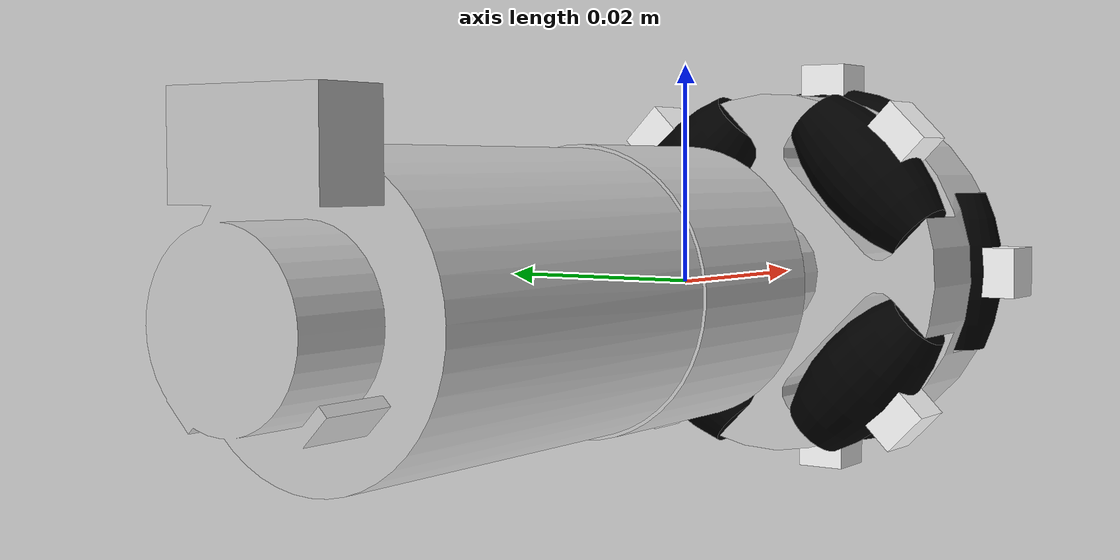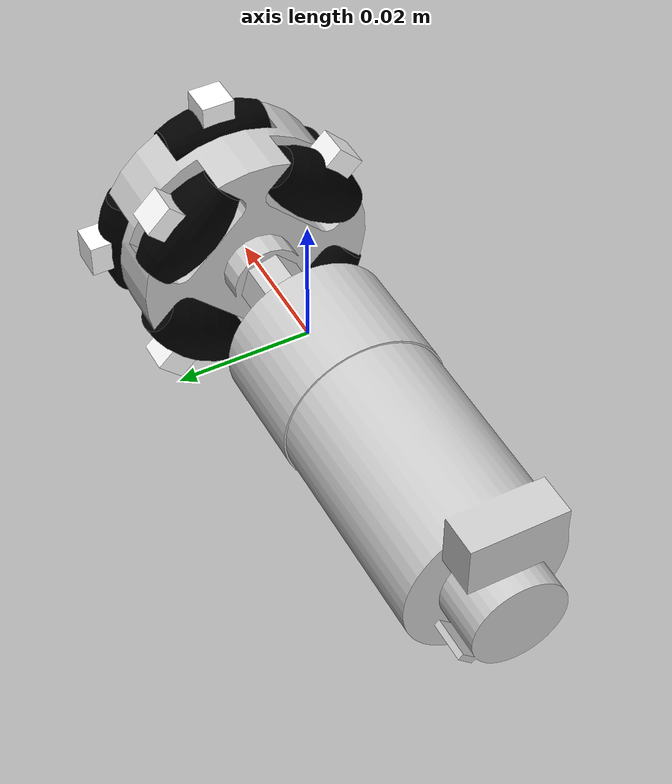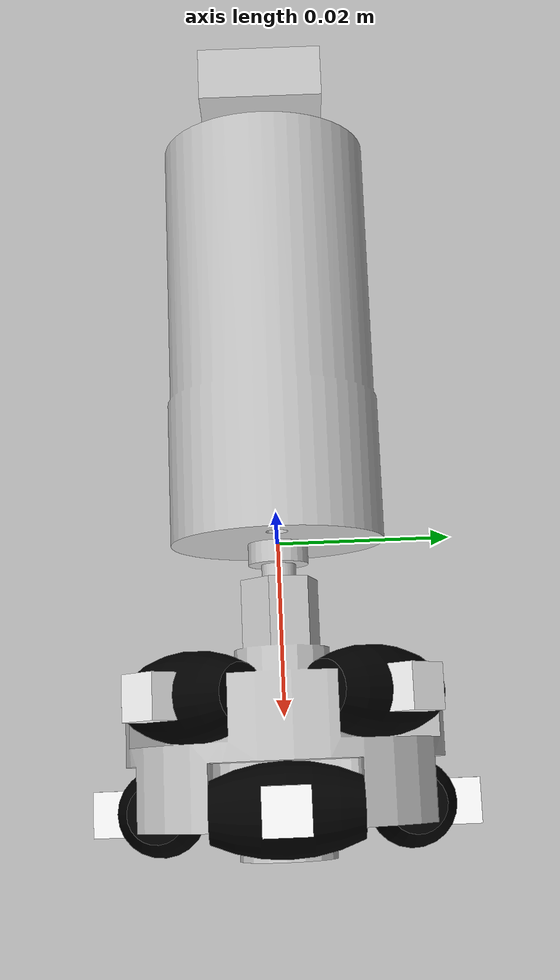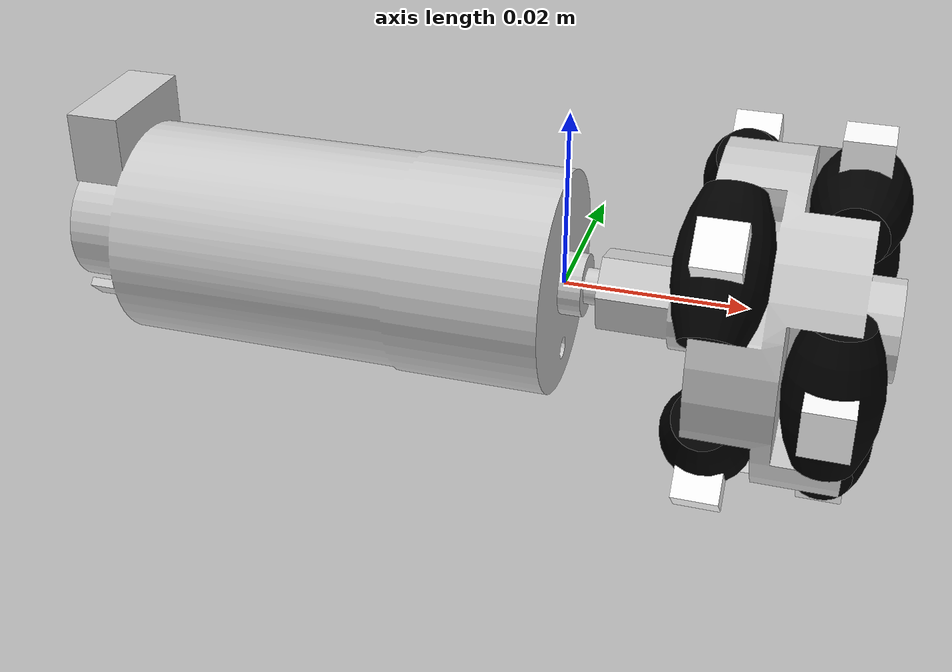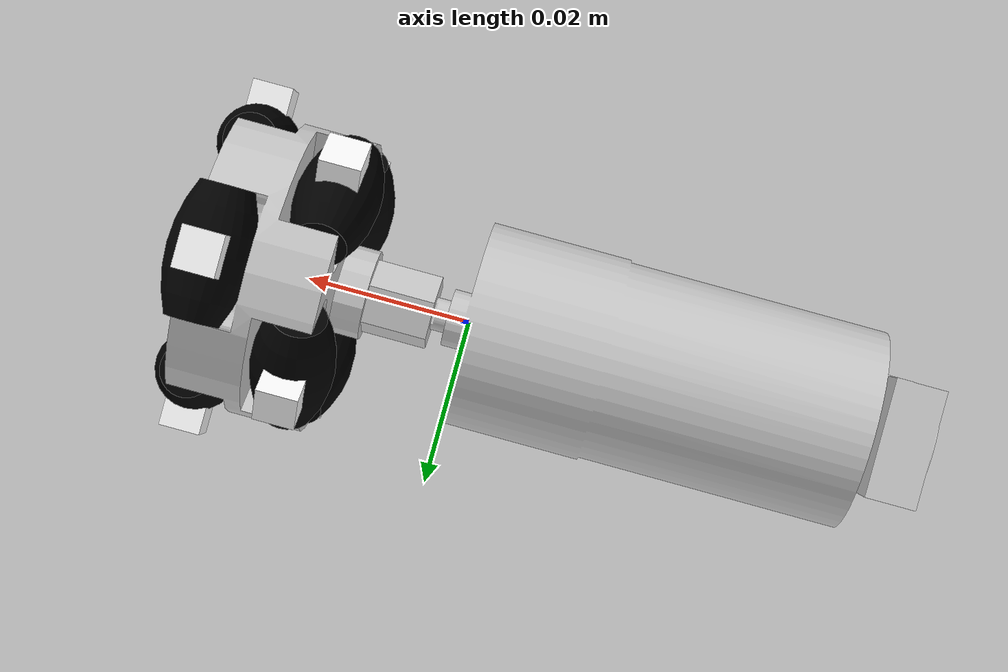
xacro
<?xml version="1.0"?>
<robot name="my_robo" xmlns:xacro="http://ros.org/wiki/xacro">
  <xacro:include filename="$(find sim2_lecture)/xacro/odm_common.xacro"/>
  <xacro:include filename="$(find sim2_lecture)/xacro/odm_omni_wheel_set1.xacro"/>

  <link name="base_link"/>

  <xacro:omni_wheel_set prefix="wheel0" parent="base_link" />

  <gazebo>
    <plugin name="gazebo_ros_control" filename="libgazebo_ros_control.so">
      <robotNamespace>/odm_robot</robotNamespace>
      <robotSimType>gazebo_ros_control/DefaultRobotHWSim</robotSimType>
      <legacyModeNS>true</legacyModeNS>
    </plugin>
  </gazebo>

</robot>

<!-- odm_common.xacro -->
<robot xmlns:xacro="http://ros.org/wiki/xacro">
  <xacro:macro name="pi" params="3.1415926535897931" />
  <material name="gray">
    <color rgba="0.8 0.8 0.8 1.0"/>
  </material>
  <material name="black">
    <color rgba="0 0 0 1.0"/>
  </material>
  <material name="white">
    <color rgba="1.0 1.0 1.0 1.0"/>
  </material>
  <material name="red">
    <color rgba="1.0 0 0 1.0"/>
  </material>
  <material name="light_red">
    <color rgba="1.0 0.5 0.5 1.0"/>
  </material>
  <material name="yellow">
    <color rgba="0 1.0 1.0 1.0"/>
  </material>
</robot>

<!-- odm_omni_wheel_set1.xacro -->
<robot xmlns:xacro="http://ros.org/wiki/xacro">
  <xacro:macro name="barrel" params="prefix parent dir">
    <joint name="${prefix}_joint" type="continuous"><!-- continuous -->
      <parent link="${parent}"/>
      <child link="${prefix}_link"/>
      <origin rpy="${pi/2} 0 ${dir}" xyz="${0.014*cos(dir)} ${0.014*sin(dir)} 0.006"/>
      <axis xyz="0 0 1"/>
      <dynamics damping="0.001"/>
    </joint>
    <transmission name="${prefix}_trans">
      <type>transmission_interface/SimpleTransmission</type>
      <joint name="${prefix}_joint">
        <hardwareInterface>hardware_interface/EffortJointInterface</hardwareInterface>
      </joint>
      <actuator name="${prefix}_motor">
        <hardwareInterface>hardware_interface/EffortJointInterface</hardwareInterface>
        <mechanicalReduction>1</mechanicalReduction>
      </actuator>
    </transmission>
    <link name="${prefix}_link">
      <visual>
        <geometry>
          <mesh filename="package://sim2_lecture/stl/omni_barrel.stl" />
        </geometry>
        <material name="black"/>
      </visual>
      <collision>
        <geometry>
          <mesh filename="package://sim2_lecture/stl/omni_barrel.stl" />
        </geometry>
      </collision>
      <inertial>
        <mass value="0.002"/>
        <inertia ixx="0.000001" ixy="0" ixz="0" iyy="0.000001" iyz="0" izz="0.000001"/>
      </inertial>
    </link>
    <gazebo reference="${prefix}_link">
      <mu1 value="2.5" />
      <mu2 value="2.5" />
      <kp value="5000" />
      <kd value="10" />
      <material>Gazebo/Black</material>
    </gazebo>

    <joint name="${prefix}_mark_joint" type="fixed">
      <parent link="${prefix}_link"/>
      <child link="${prefix}_mark_link"/>
      <origin rpy="0 0 0" xyz="0.005 0 0"/>
    </joint>
    <link name="${prefix}_mark_link">
      <visual>
        <geometry>
          <box size="0.005 0.005 0.005"/>
        </geometry>
        <material name="white"/>
      </visual>
    </link>
    <gazebo reference="${prefix}_mark_link">
      <material>Gazebo/White</material>
    </gazebo>
  </xacro:macro>

  <xacro:macro name="motor" params="prefix parent">
    <joint name="${prefix}_joint" type="fixed">
      <parent link="${parent}"/>
      <child  link="${prefix}_body_link"/>
    </joint>
    <link name="${prefix}_body_link">
      <visual>
        <geometry>
          <mesh filename="package://sim2_lecture/stl/ga25_body.stl" />
        </geometry>
        <material name="gray"/>
      </visual>
      <collision>
        <origin rpy="0 ${radians(90)} 0" xyz="-0.025 0 0"/>
        <geometry>
          <cylinder radius="0.012" length="0.05" />
        </geometry>
      </collision>
      <inertial>
        <mass value="0.150"/>
        <inertia ixx="0.0001" ixy="0" ixz="0" iyy="0.0001" iyz="0" izz="0.0001"/>
      </inertial>
    </link>
    <gazebo reference="${prefix}_body_link">
      <material>Gazebo/Gray</material>
    </gazebo>

    <joint name="${prefix}_shaft_joint" type="continuous">
      <parent link="${prefix}_body_link"/>
      <child  link="${prefix}_shaft_link"/>
      <origin rpy="0 0 0" xyz="0.012 0 0"/>
      <axis xyz="1 0 0"/>
      <limit velocity="40.0" effort="3.0" />
      <dynamics damping="0.01" friction="0.0"/>
    </joint>
    <transmission name="${prefix}_shaft_trans">
      <type>transmission_interface/SimpleTransmission</type>
      <joint name="${prefix}_shaft_joint">
        <hardwareInterface>hardware_interface/EffortJointInterface</hardwareInterface>
      </joint>
      <actuator name="${prefix}_shaft_motor">
        <hardwareInterface>hardware_interface/EffortJointInterface</hardwareInterface>
        <mechanicalReduction>1</mechanicalReduction>
      </actuator>
    </transmission>

    <link name="${prefix}_shaft_link">
      <visual>
        <geometry>
          <mesh filename="package://sim2_lecture/stl/ga25_shaft.stl" />
        </geometry>
        <material name="gray"/>
      </visual>
      <inertial>
        <mass value="0.010"/>
        <inertia ixx="0.0000005" ixy="0" ixz="0" iyy="0.000001" iyz="0" izz="0.000001"/>
      </inertial>
    </link>
    <gazebo reference="${prefix}_shaft_link">
      <material>Gazebo/Gray</material>
    </gazebo>
  </xacro:macro>

  <xacro:macro name="omni_wheel_set" params="prefix parent">
    <joint name="${prefix}_base_joint" type="fixed">
      <parent link="${parent}"/>
      <child link="${prefix}_base_link"/>
      <origin rpy="0 0 0" xyz="0 0 0"/>
    </joint>
    <link name="${prefix}_base_link" />

    <xacro:motor prefix="${prefix}_motor" parent="${prefix}_base_link" />

    <joint name="${prefix}_housind_joint" type="fixed">
      <parent link="${prefix}_motor_shaft_link"/>
      <child  link="${prefix}_housing_link"/>
      <origin xyz="0.012 0 0" rpy="0 ${radians(90)} 0"/>
    </joint>
    <link name="${prefix}_housing_link">
      <visual>
        <geometry>
          <mesh filename="package://sim2_lecture/stl/omni_housing.stl" />
        </geometry>
        <origin xyz="0 0 0" rpy="0 0 0"/>
        <material name="gray"/>
      </visual>
      <inertial>
        <mass value="0.025"/>
        <inertia ixx="0.0001" ixy="0" ixz="0" iyy="0.0001" iyz="0" izz="0.0001"/>
      </inertial>
    </link>
    <gazebo reference="${prefix}_housing_link">
      <material>Gazebo/Gray</material>
    </gazebo>

    <joint name="${prefix}_housing_s_joint" type="fixed">
      <parent link="${prefix}_housing_link"/>
      <child link="${prefix}_housing_s_link"/>
      <origin rpy="0 ${pi} ${pi/4}" xyz="0 0 0"/>
    </joint>
    <link name="${prefix}_housing_s_link">
      <inertial>
        <mass value="0.025"/>
        <inertia ixx="0.0001" ixy="0" ixz="0" iyy="0.0001" iyz="0" izz="0.0001"/>
      </inertial>
    </link>

    <xacro:barrel prefix="${prefix}_barrel_1" parent="${prefix}_housing_link" dir="0"/>
    <xacro:barrel prefix="${prefix}_barrel_2" parent="${prefix}_housing_link" dir="${pi/2}"/>
    <xacro:barrel prefix="${prefix}_barrel_3" parent="${prefix}_housing_link" dir="${pi}"/>
    <xacro:barrel prefix="${prefix}_barrel_4" parent="${prefix}_housing_link" dir="${-pi/2}"/>
    <xacro:barrel prefix="${prefix}_barrel_5" parent="${prefix}_housing_s_link" dir="0"/>
    <xacro:barrel prefix="${prefix}_barrel_6" parent="${prefix}_housing_s_link" dir="${pi/2}"/>
    <xacro:barrel prefix="${prefix}_barrel_7" parent="${prefix}_housing_s_link" dir="${pi}"/>
    <xacro:barrel prefix="${prefix}_barrel_8" parent="${prefix}_housing_s_link" dir="${-pi/2}"/>
  </xacro:macro>

</robot>
